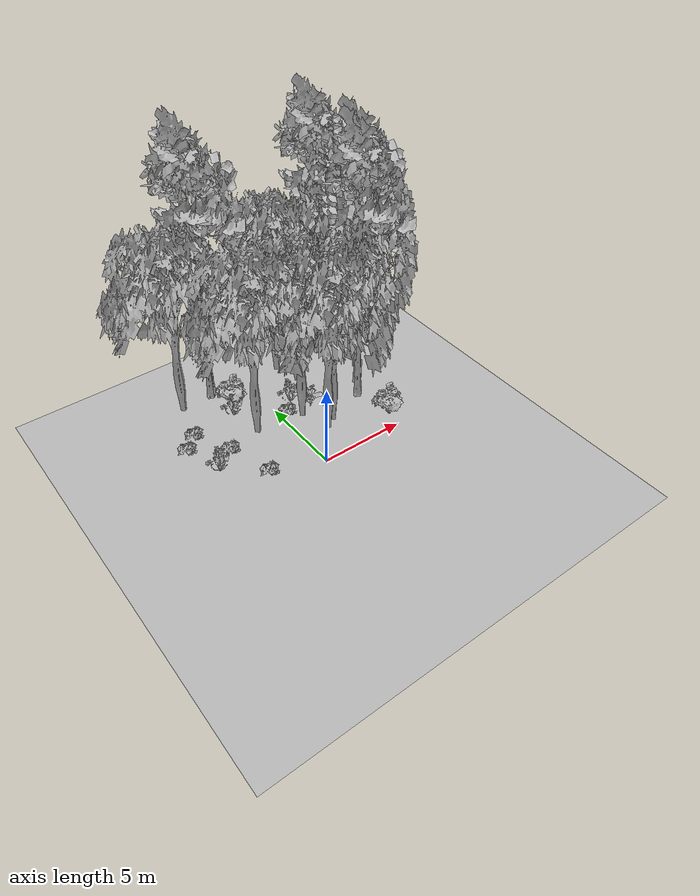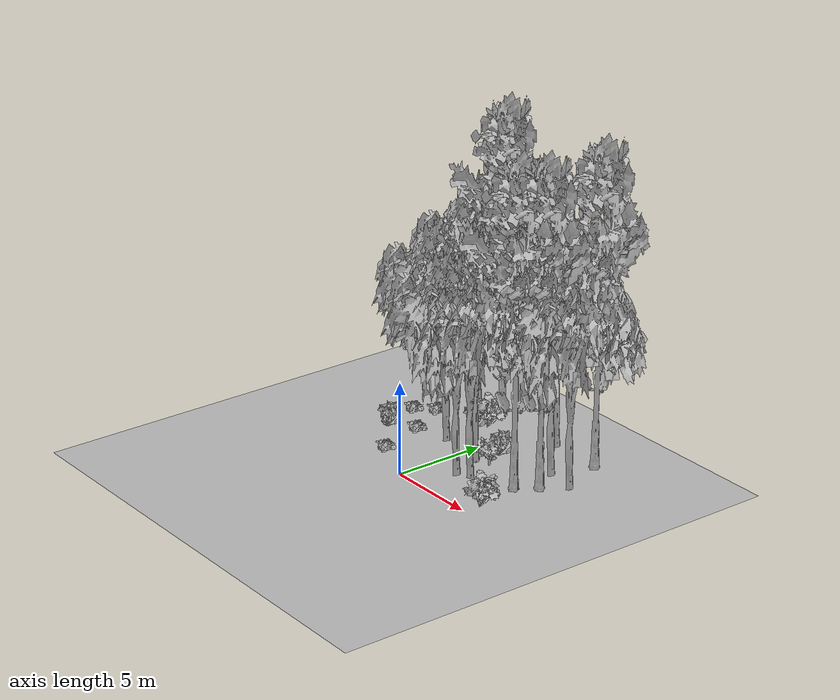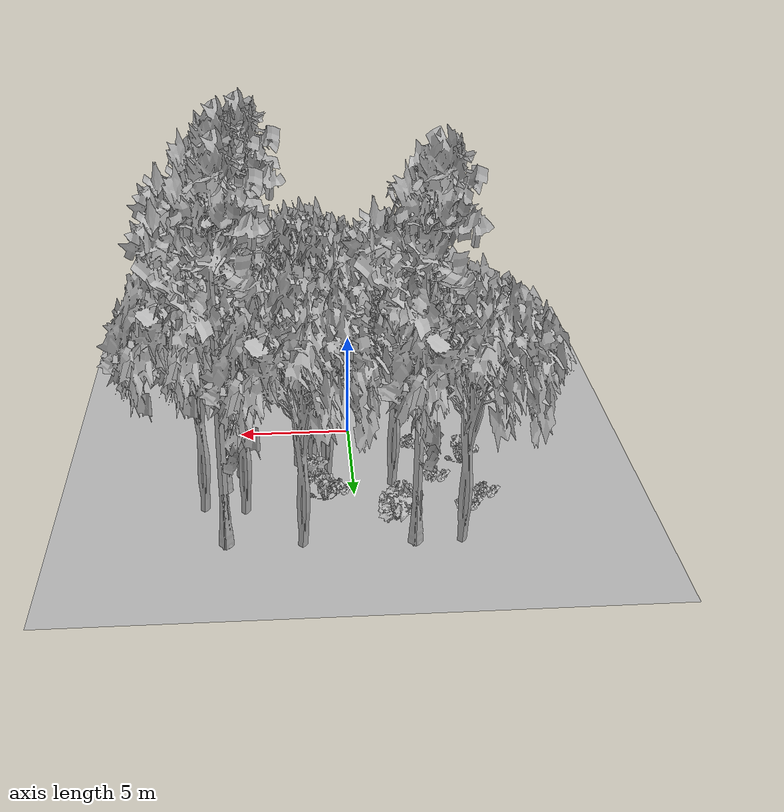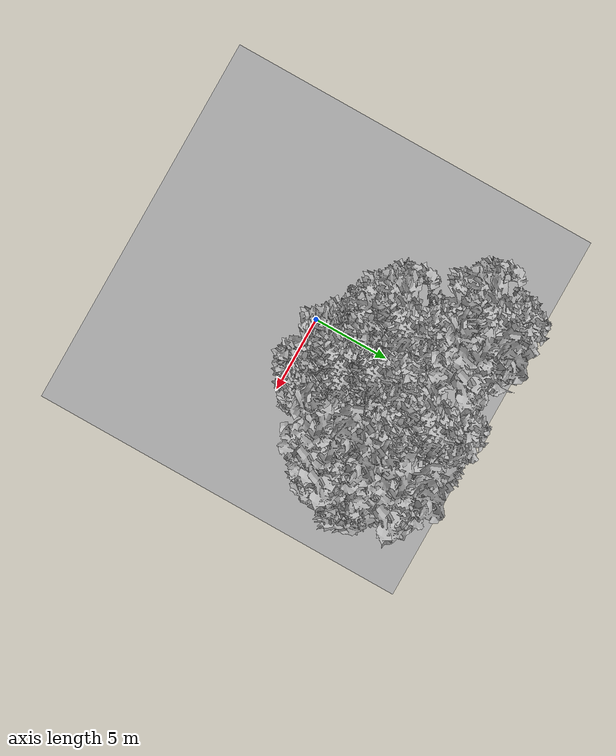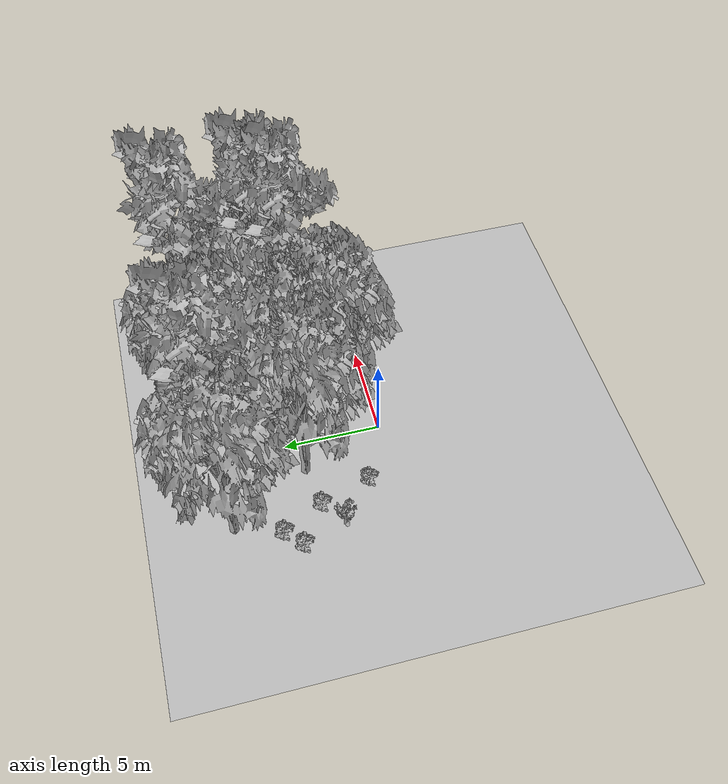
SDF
<sdf version="1.7">
 <world name="default">
  <model name="ground_plane">
   <static>1</static>
   <link name="link">
    <collision name="collision">
     <pose>-50 0 0 0 -0 0</pose>
     <geometry><plane><normal>0 0 1</normal><size>80 80</size></plane></geometry>
     <surface><contact><ode><min_depth>0.01</min_depth><max_vel>0</max_vel></ode></contact></surface>
    </collision>
    <visual name="grass">
     <cast_shadows>0</cast_shadows>
     <geometry>
      <mesh>
       <scale>0.46714285714285714 0.46714285714285714 0.1</scale>
       <uri>file://grass_plane/meshes/grass_plane.dae</uri>
      </mesh>
     </geometry>
    </visual>
   </link>
  </model>
  <model name="Tree 47">
   <static>1</static>
   <pose>-4.2615472116433395 8.315711341037371 0 1.57079 -0 0</pose>
   <link name="link">
    <collision name="collision">
     <geometry><mesh><scale>3.5 5 3.5</scale><uri>model://tree_2/meshes/tree_2.obj</uri></mesh></geometry>
    </collision>
    <visual name="visual">
     <geometry><mesh><scale>3.5 5 3.5</scale><uri>model://tree_2/meshes/tree_2.obj</uri></mesh></geometry>
    </visual>
   </link>
  </model>
  <model name="Tree 113">
   <static>1</static>
   <pose>1.0556772797582354 3.8717102174523887 0 1.57079 -0 0</pose>
   <link name="link">
    <collision name="collision">
     <geometry><mesh><scale>3.5 5 3.5</scale><uri>model://tree_2/meshes/tree_2.obj</uri></mesh></geometry>
    </collision>
    <visual name="visual">
     <geometry><mesh><scale>3.5 5 3.5</scale><uri>model://tree_2/meshes/tree_2.obj</uri></mesh></geometry>
    </visual>
   </link>
  </model>
  <model name="Tree 162">
   <static>1</static>
   <pose>5.540404730725989 4.4450193981579105 0 1.57079 -0 0</pose>
   <link name="link">
    <collision name="collision">
     <geometry><mesh><scale>3.5 5 3.5</scale><uri>model://tree_9/meshes/tree_9.obj</uri></mesh></geometry>
    </collision>
    <visual name="visual">
     <geometry><mesh><scale>3.5 5 3.5</scale><uri>model://tree_9/meshes/tree_9.obj</uri></mesh></geometry>
    </visual>
   </link>
  </model>
  <model name="Tree 213">
   <static>1</static>
   <pose>4.549713982373554 5.92046735972297 0 1.57079 -0 0</pose>
   <link name="link">
    <collision name="collision">
     <geometry><mesh><scale>3.5 5 3.5</scale><uri>model://tree_2/meshes/tree_2.obj</uri></mesh></geometry>
    </collision>
    <visual name="visual">
     <geometry><mesh><scale>3.5 5 3.5</scale><uri>model://tree_2/meshes/tree_2.obj</uri></mesh></geometry>
    </visual>
   </link>
  </model>
  <model name="Tree 409">
   <static>1</static>
   <pose>-2.2595723746986565 8.4029850259424 0 1.57079 -0 0</pose>
   <link name="link">
    <collision name="collision">
     <geometry><mesh><scale>3.5 5 3.5</scale><uri>model://tree_9/meshes/tree_9.obj</uri></mesh></geometry>
    </collision>
    <visual name="visual">
     <geometry><mesh><scale>3.5 5 3.5</scale><uri>model://tree_9/meshes/tree_9.obj</uri></mesh></geometry>
    </visual>
   </link>
  </model>
  <model name="Tree 453">
   <static>1</static>
   <pose>5.3811616401284255 8.18280334463148 0 1.57079 -0 0</pose>
   <link name="link">
    <collision name="collision">
     <geometry><mesh><scale>3.5 5 3.5</scale><uri>model://tree_9/meshes/tree_9.obj</uri></mesh></geometry>
    </collision>
    <visual name="visual">
     <geometry><mesh><scale>3.5 5 3.5</scale><uri>model://tree_9/meshes/tree_9.obj</uri></mesh></geometry>
    </visual>
   </link>
  </model>
  <model name="Tree 459">
   <static>1</static>
   <pose>-1.7808298414353843 4.234123640123151 0 1.57079 -0 0</pose>
   <link name="link">
    <collision name="collision">
     <geometry><mesh><scale>3.5 5 3.5</scale><uri>model://tree_2/meshes/tree_2.obj</uri></mesh></geometry>
    </collision>
    <visual name="visual">
     <geometry><mesh><scale>3.5 5 3.5</scale><uri>model://tree_2/meshes/tree_2.obj</uri></mesh></geometry>
    </visual>
   </link>
  </model>
  <model name="Tree 521">
   <static>1</static>
   <pose>6.2683729318742465 5.6634471826726696 0 1.57079 -0 0</pose>
   <link name="link">
    <collision name="collision">
     <geometry><mesh><scale>3.5 5 3.5</scale><uri>model://tree_2/meshes/tree_2.obj</uri></mesh></geometry>
    </collision>
    <visual name="visual">
     <geometry><mesh><scale>3.5 5 3.5</scale><uri>model://tree_2/meshes/tree_2.obj</uri></mesh></geometry>
    </visual>
   </link>
  </model>
  <model name="Tree 541">
   <static>1</static>
   <pose>2.1944676540316053 8.25799842622628 0 1.57079 -0 0</pose>
   <link name="link">
    <collision name="collision">
     <geometry><mesh><scale>3.5 5 3.5</scale><uri>model://tree_2/meshes/tree_2.obj</uri></mesh></geometry>
    </collision>
    <visual name="visual">
     <geometry><mesh><scale>3.5 5 3.5</scale><uri>model://tree_2/meshes/tree_2.obj</uri></mesh></geometry>
    </visual>
   </link>
  </model>
  <model name="Tree 548">
   <static>1</static>
   <pose>2.2690142296890556 2.5674246914088954 0 1.57079 -0 0</pose>
   <link name="link">
    <collision name="collision">
     <geometry><mesh><scale>3.5 5 3.5</scale><uri>model://tree_2/meshes/tree_2.obj</uri></mesh></geometry>
    </collision>
    <visual name="visual">
     <geometry><mesh><scale>3.5 5 3.5</scale><uri>model://tree_2/meshes/tree_2.obj</uri></mesh></geometry>
    </visual>
   </link>
  </model>
  <model name="Tree 608">
   <static>1</static>
   <pose>4.7902965826697965 3.4059341695441887 0 1.57079 -0 0</pose>
   <link name="link">
    <collision name="collision">
     <geometry><mesh><scale>3.5 5 3.5</scale><uri>model://tree_9/meshes/tree_9.obj</uri></mesh></geometry>
    </collision>
    <visual name="visual">
     <geometry><mesh><scale>3.5 5 3.5</scale><uri>model://tree_9/meshes/tree_9.obj</uri></mesh></geometry>
    </visual>
   </link>
  </model>
  <model name="Tree 619">
   <static>1</static>
   <pose>1.65048271498177 2.18268939049824 0 1.57079 -0 0</pose>
   <link name="link">
    <collision name="collision">
     <geometry><mesh><scale>3.5 5 3.5</scale><uri>model://tree_2/meshes/tree_2.obj</uri></mesh></geometry>
    </collision>
    <visual name="visual">
     <geometry><mesh><scale>3.5 5 3.5</scale><uri>model://tree_2/meshes/tree_2.obj</uri></mesh></geometry>
    </visual>
   </link>
  </model>
  <model name="Bush 40">
   <static>1</static>
   <pose>0.5804668882266952 4.579430468435596 0 1.57079 -0 0</pose>
   <link name="link">
    <collision name="collision">
     <geometry><mesh><scale>2 2 2</scale><uri>model://bush_2/meshes/bush_2.obj</uri></mesh></geometry>
     <surface><contact><collide_without_contact>false</collide_without_contact></contact></surface>
    </collision>
    <visual name="visual">
     <geometry><mesh><scale>2 2 2</scale><uri>model://bush_2/meshes/bush_2.obj</uri></mesh></geometry>
    </visual>
   </link>
  </model>
  <model name="Bush 68">
   <static>1</static>
   <pose>-4.789992651457467 6.005409890089055 0 1.57079 -0 0</pose>
   <link name="link">
    <collision name="collision">
     <geometry><mesh><scale>2 2 2</scale><uri>model://bush_2/meshes/bush_2.obj</uri></mesh></geometry>
     <surface><contact><collide_without_contact>false</collide_without_contact></contact></surface>
    </collision>
    <visual name="visual">
     <geometry><mesh><scale>2 2 2</scale><uri>model://bush_2/meshes/bush_2.obj</uri></mesh></geometry>
    </visual>
   </link>
  </model>
  <model name="Bush 98">
   <static>1</static>
   <pose>-2.8740917904895156 1.2181385491465164 0 1.57079 -0 0</pose>
   <link name="link">
    <collision name="collision">
     <geometry><mesh><scale>2 2 2</scale><uri>model://bush_2/meshes/bush_2.obj</uri></mesh></geometry>
     <surface><contact><collide_without_contact>false</collide_without_contact></contact></surface>
    </collision>
    <visual name="visual">
     <geometry><mesh><scale>2 2 2</scale><uri>model://bush_2/meshes/bush_2.obj</uri></mesh></geometry>
    </visual>
   </link>
  </model>
  <model name="Bush 145">
   <static>1</static>
   <pose>1.9265766974148875 4.175333852792065 0 1.57079 -0 0</pose>
   <link name="link">
    <collision name="collision">
     <geometry><mesh><scale>2 2 2</scale><uri>model://bush_0/meshes/bush_0.obj</uri></mesh></geometry>
     <surface><contact><collide_without_contact>false</collide_without_contact></contact></surface>
    </collision>
    <visual name="visual">
     <geometry><mesh><scale>2 2 2</scale><uri>model://bush_0/meshes/bush_0.obj</uri></mesh></geometry>
    </visual>
   </link>
  </model>
  <model name="Bush 302">
   <static>1</static>
   <pose>1.2555397030430626 5.294984791293615 0 1.57079 -0 0</pose>
   <link name="link">
    <collision name="collision">
     <geometry><mesh><scale>2 2 2</scale><uri>model://bush_4/meshes/bush_4.obj</uri></mesh></geometry>
     <surface><contact><collide_without_contact>false</collide_without_contact></contact></surface>
    </collision>
    <visual name="visual">
     <geometry><mesh><scale>2 2 2</scale><uri>model://bush_4/meshes/bush_4.obj</uri></mesh></geometry>
    </visual>
   </link>
  </model>
  <model name="Bush 313">
   <static>1</static>
   <pose>5.1805914705283485 0.9273438185335863 0 1.57079 -0 0</pose>
   <link name="link">
    <collision name="collision">
     <geometry><mesh><scale>2 2 2</scale><uri>model://bush_1/meshes/bush_1.obj</uri></mesh></geometry>
     <surface><contact><collide_without_contact>false</collide_without_contact></contact></surface>
    </collision>
    <visual name="visual">
     <geometry><mesh><scale>2 2 2</scale><uri>model://bush_1/meshes/bush_1.obj</uri></mesh></geometry>
    </visual>
   </link>
  </model>
  <model name="Bush 324">
   <static>1</static>
   <pose>-1.6405274806784007 6.9178308071922885 0 1.57079 -0 0</pose>
   <link name="link">
    <collision name="collision">
     <geometry><mesh><scale>2 2 2</scale><uri>model://bush_1/meshes/bush_1.obj</uri></mesh></geometry>
     <surface><contact><collide_without_contact>false</collide_without_contact></contact></surface>
    </collision>
    <visual name="visual">
     <geometry><mesh><scale>2 2 2</scale><uri>model://bush_1/meshes/bush_1.obj</uri></mesh></geometry>
    </visual>
   </link>
  </model>
  <model name="Bush 500">
   <static>1</static>
   <pose>-3.6982046276977627 3.859602801348089 0 1.57079 -0 0</pose>
   <link name="link">
    <collision name="collision">
     <geometry><mesh><scale>2 2 2</scale><uri>model://bush_2/meshes/bush_2.obj</uri></mesh></geometry>
     <surface><contact><collide_without_contact>false</collide_without_contact></contact></surface>
    </collision>
    <visual name="visual">
     <geometry><mesh><scale>2 2 2</scale><uri>model://bush_2/meshes/bush_2.obj</uri></mesh></geometry>
    </visual>
   </link>
  </model>
  <model name="Bush 524">
   <static>1</static>
   <pose>-5.685993510693251 5.171200527117385 0 1.57079 -0 0</pose>
   <link name="link">
    <collision name="collision">
     <geometry><mesh><scale>2 2 2</scale><uri>model://bush_2/meshes/bush_2.obj</uri></mesh></geometry>
     <surface><contact><collide_without_contact>false</collide_without_contact></contact></surface>
    </collision>
    <visual name="visual">
     <geometry><mesh><scale>2 2 2</scale><uri>model://bush_2/meshes/bush_2.obj</uri></mesh></geometry>
    </visual>
   </link>
  </model>
  <model name="Bush 586">
   <static>1</static>
   <pose>-2.0218667828530172 6.218116940109148 0 1.57079 -0 0</pose>
   <link name="link">
    <collision name="collision">
     <geometry><mesh><scale>2 2 2</scale><uri>model://bush_4/meshes/bush_4.obj</uri></mesh></geometry>
     <surface><contact><collide_without_contact>false</collide_without_contact></contact></surface>
    </collision>
    <visual name="visual">
     <geometry><mesh><scale>2 2 2</scale><uri>model://bush_4/meshes/bush_4.obj</uri></mesh></geometry>
    </visual>
   </link>
  </model>
  <model name="Bush 599">
   <static>1</static>
   <pose>-4.938545219408276 2.8665857222431015 0 1.57079 -0 0</pose>
   <link name="link">
    <collision name="collision">
     <geometry><mesh><scale>2 2 2</scale><uri>model://bush_4/meshes/bush_4.obj</uri></mesh></geometry>
     <surface><contact><collide_without_contact>false</collide_without_contact></contact></surface>
    </collision>
    <visual name="visual">
     <geometry><mesh><scale>2 2 2</scale><uri>model://bush_4/meshes/bush_4.obj</uri></mesh></geometry>
    </visual>
   </link>
  </model>
 </world>
</sdf>
